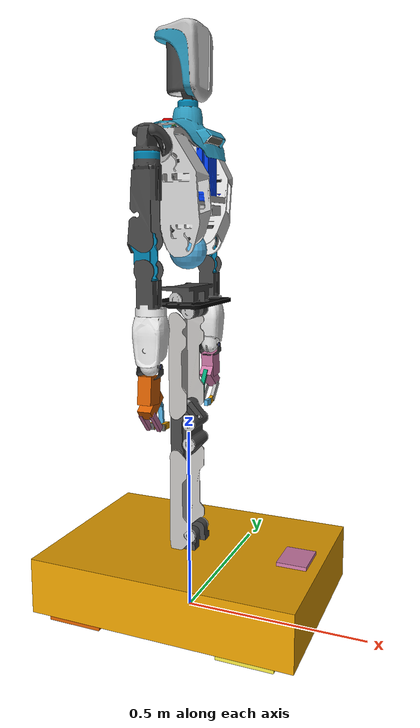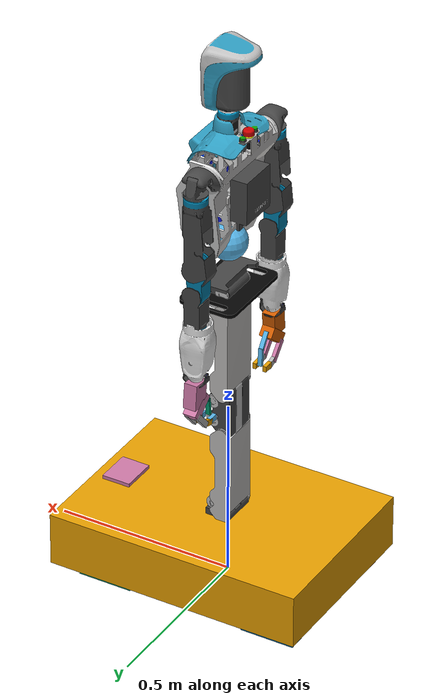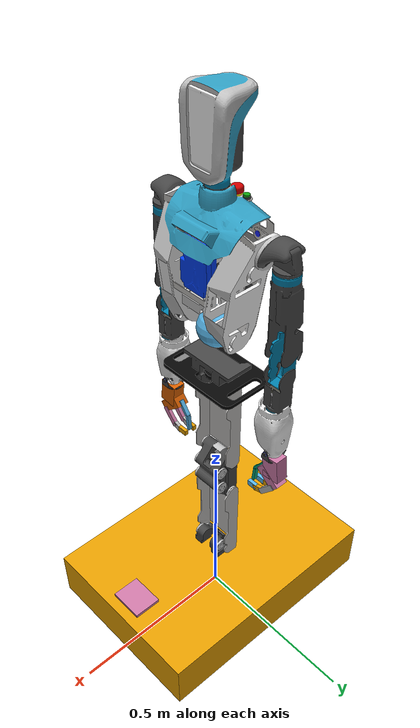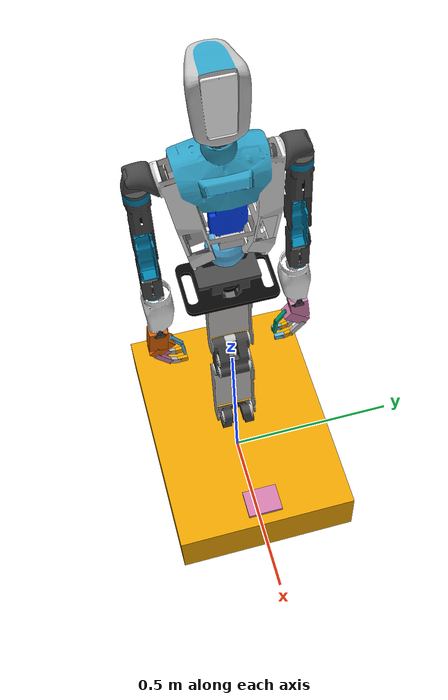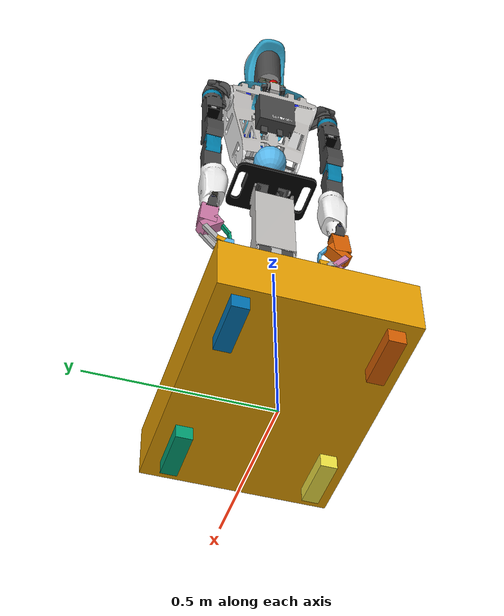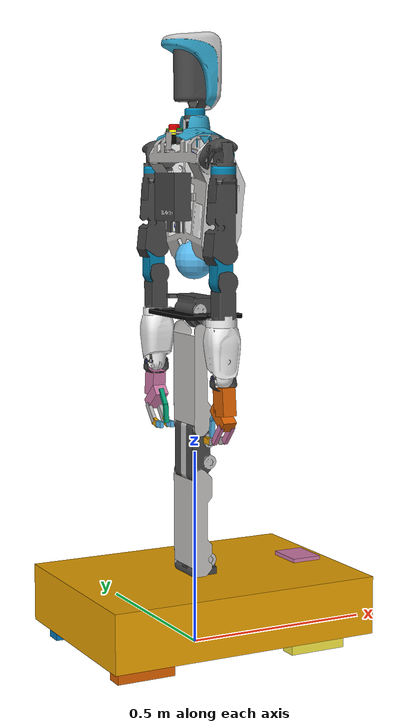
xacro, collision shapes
<?xml version="1.0"?>
<robot name="SEED-Noid-Mover-typeG" xmlns:xacro="http://ros.org/wiki/xacro">

  <!-- The following included files set up definitions of parts of the robot body -->
  <!-- wraps upperbody and hand-->
  <xacro:include filename="$(find seed_r7_description)/typeg/noid-upper.urdf.xacro" />
  <!-- wraps lifter and wheels-->
  <xacro:include filename="$(find seed_r7_description)/typeg/noid-wheels.urdf.xacro" />

 <!-- Now we can start using the macros included above to define the actual robot -->
 <xacro:noid-upper/>
 <xacro:noid-wheels base_link="base_link"/>

 <!-- gazebo settings -->
 <!-- camera -->

<xacro:property  name="camera_name" value="front_camera"/>
<link name="${camera_name}_depth_optical_frame"/>
<joint name="${camera_name}_depth_optical_joint" type="fixed">
  <origin xyz="0 0 0" rpy="${-M_PI/2} 0 ${-M_PI/2}" />
  <parent link="${camera_name}_link" />
  <child link="${camera_name}_depth_optical_frame" />
</joint>
<xacro:gazebo_depth_camera link_name="${camera_name}_link"
                      frame_name="${camera_name}_depth_optical_frame"
                      camera_name="${camera_name}"/>

<xacro:property  name="camera_name" value="rear_camera"/>
<link name="${camera_name}_depth_optical_frame"/>
<joint name="${camera_name}_depth_optical_joint" type="fixed">
  <origin xyz="0 0 0" rpy="${-M_PI/2} 0 ${-M_PI/2}" />
  <parent link="${camera_name}_link" />
  <child link="${camera_name}_depth_optical_frame" />
</joint>
<xacro:gazebo_depth_camera link_name="${camera_name}_link"
                      frame_name="${camera_name}_depth_optical_frame"
                      camera_name="${camera_name}"/>

<xacro:property  name="camera_name" value="chest_camera"/>
<link name="${camera_name}_depth_optical_frame"/>
<joint name="${camera_name}_depth_optical_joint" type="fixed">
  <origin xyz="0 0 0" rpy="${-M_PI/2} 0 ${-M_PI/2}" />
  <parent link="${camera_name}_link" />
  <child link="${camera_name}_depth_optical_frame" />
</joint>
<xacro:gazebo_depth_camera link_name="${camera_name}_link"
                      frame_name="${camera_name}_depth_optical_frame"
                      camera_name="${camera_name}"/>

 <!-- laser -->
 <xacro:gazebo_laser_sensor link_name="wheels_base_laser_link"
                            frame_name="wheels_base_laser_link" />

 <!-- joint control -->
 <xacro:gazebo_trajectory_controller />

 <!-- mobile base -->
 <xacro:gazebo_base_controller base_frame="base_link" />

 <!-- mimic joints -->
 <gazebo>
   <plugin name="mimic_updater" filename="libmimic_plugin.so">
     <!-- lifter -->
     <mimic joint="knee_joint"  offset="0.0" multiplier="-1.0"
            P="100" I="0.1" D="10" i_max="500" i_min="-500"
            command_max="2000" command_min="-2000" velocity='true'>
       knee_joint_mimic
     </mimic>
     <mimic joint="ankle_joint"  offset="0.0" multiplier="-1.0"
            P="100" I="0.1" D="10" i_max="500" i_min="-500"
            command_max="2000" command_min="-2000" velocity='true'>
       ankle_joint_mimic
     </mimic>
     <!-- lifter(dummy) -->
     <mimic joint="knee_joint"  offset="0.0" multiplier="-1.0"
            P="100" I="0.0" D="10" i_max="0" i_min="0"
            command_max="200" command_min="-200" velocity='true'>
       knee_joint_dummy
     </mimic>
     <mimic joint="ankle_joint"  offset="0.0" multiplier="1.0"
            P="100" I="0.0" D="10" i_max="0" i_min="0"
            command_max="200" command_min="-200"  velocity='true'>
       ankle_joint_dummy
     </mimic>

     <!-- lhand -->
     <mimic joint="l_thumb_joint"  offset="0.0" multiplier="-1.0"
            P="30" I="0.0" D="0.03" i_max="0" i_min="0"
            command_max="50" command_min="-50">
       l_indexbase_joint
     </mimic>
     <mimic joint="l_thumb_joint"  offset="-0.2" multiplier="-0.3"
            P="30" I="0.0" D="0.03" i_max="0" i_min="0"
            command_max="50" command_min="-50">
       l_indexmid_joint
     </mimic>
     <mimic joint="l_thumb_joint"  offset="-0.2" multiplier="-0.3"
            P="30" I="0.0" D="0.03" i_max="0" i_min="0"
            command_max="50" command_min="-50">
       l_indexend_joint
     </mimic>
     <!-- rhand -->
     <mimic joint="r_thumb_joint"  offset="0.0" multiplier="-1.0"
            P="30" I="0.0" D="0.03" i_max="0" i_min="0"
            command_max="50" command_min="-50">
       r_indexbase_joint
     </mimic>
     <mimic joint="r_thumb_joint"  offset="0.2" multiplier="-0.3"
            P="30" I="0.0" D="0.03" i_max="0" i_min="0"
            command_max="50" command_min="-50">
       r_indexmid_joint
     </mimic>
     <mimic joint="r_thumb_joint"  offset="0.2" multiplier="-0.3"
            P="30" I="0.0" D="0.03" i_max="0" i_min="0"
            command_max="50" command_min="-50">
       r_indexend_joint
     </mimic>

      <!-- r_elbow -->
     <mimic joint="r_elbow_joint"  offset="0.0" multiplier="-1.0"
            P="100" I="0.01" D="10" i_max="0" i_min="-0"
            command_max="50" command_min="-50" velocity='true'>
       r_elbow_joint_mimic
     </mimic>

     <mimic joint="r_elbow_joint"  offset="0.0" multiplier="0.591"
            P="100" I="0.01" D="10" i_max="0" i_min="-0"
            command_max="50" command_min="-50" velocity='true'>
       r_elbow_middle_joint
     </mimic>

     <mimic joint="r_elbow_joint"  offset="0.0" multiplier="0.409"
            P="100" I="0.01" D="10" i_max="0" i_min="-0"
            command_max="50" command_min="-50" velocity='true'>
       r_elbow_middle_joint_mimic
     </mimic>

     <!-- l_elbow -->
     <mimic joint="l_elbow_joint"  offset="0.0" multiplier="-1.0"
            P="100" I="0.01" D="10" i_max="0" i_min="-0"
            command_max="50" command_min="-50" velocity='true'>
       l_elbow_joint_mimic
     </mimic>

     <mimic joint="l_elbow_joint"  offset="0.0" multiplier="0.591"
            P="100" I="0.01" D="10" i_max="0" i_min="-0"
            command_max="50" command_min="-50" velocity='true'>
       l_elbow_middle_joint
     </mimic>

     <mimic joint="l_elbow_joint"  offset="0.0" multiplier="0.409"
            P="100" I="0.01" D="10" i_max="0" i_min="-0"
            command_max="50" command_min="-50" velocity='true'>
       l_elbow_middle_joint_mimic
     </mimic>

   </plugin>
 </gazebo>

</robot>

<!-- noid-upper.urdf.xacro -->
<!-- XML namespaces -->
<robot name="noid-upper" xmlns:xacro="http://ros.org/wiki/xacro">

  <xacro:include filename="$(find seed_r7_description)/urdf/typeG_upperbody/noid_upper_typeg.urdf.xacro" />
  <xacro:include filename="$(find seed_r7_description)/urdf/trx_s/trx_s.urdf.xacro" />

  <xacro:macro name="noid-upper" params="disable_mesh:=false">

  <xacro:noid_upper base_link="waist_link" r_hand_link="r_hand_link" l_hand_link="l_hand_link" disable_mesh="${disable_mesh}"/>

  <xacro:trx_s prefix="r" reflect="1" disable_mesh="${disable_mesh}"/>
  <xacro:trx_s prefix="l" reflect="-1" disable_mesh="${disable_mesh}"/>

  <joint name="upper_lower_connector" type="fixed">
    <parent link="lifter_top_link"/>
    <child link="waist_link"/>
    <origin xyz="0.0 0.0 0.0" rpy="0 0 0 "/>
  </joint>

  </xacro:macro>

</robot>

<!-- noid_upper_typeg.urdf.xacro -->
<!-- XML namespaces -->
<robot name="noid_upper_typeg" xmlns:xacro="http://ros.org/wiki/xacro">

  <xacro:include filename="$(find seed_r7_description)/urdf/gazebo.xacro" />

  <xacro:property name="wrist_sensor_offset" value="0.0"/>

  <xacro:macro name="noid_upper" params="base_link disable_mesh:=false r_hand_link:=r_hand_link l_hand_link:=l_hand_link">
  <!-- ============================   typeG_upper   ============================ -->
  <link name="${base_link}">
    <xacro:unless value="${disable_mesh}"> <visual>
      <origin xyz="0 0 0" rpy="0 0 0"/>
      <geometry>
        <mesh filename="package://seed_r7_description/meshes/typeG_upperbody/waist_link.dae" scale="1 1 1" />
      </geometry>
    </visual> </xacro:unless>
    <xacro:unless value="${disable_mesh}"> <collision>
      <origin xyz="0 0 0" rpy="0 -0 0"/>
      <geometry>
        <mesh filename="package://seed_r7_description/meshes/typeG_upperbody/waist_link.dae" scale="1 1 1" />
      </geometry>
    </collision> </xacro:unless>
    <inertial>
      <mass value="1.257" />
      <origin xyz="0 0 0.0" rpy="0 0 0"/>
      <inertia ixx="0.034" ixy="0" ixz="0" iyy="0.034" iyz="0" izz="0.018"/>
    </inertial>
  </link>
  <xacro:gazebo_link_reference link_name="${base_link}" />

  <link name="hip_sphere_link">
    <xacro:unless value="${disable_mesh}"> <visual>
      <origin xyz="0 0 0" rpy="0 0 0"/>
      <geometry>
        <mesh filename="package://seed_r7_description/meshes/typeG_upperbody/hip_sphere_link.dae" scale="1 1 1" />
      </geometry>
    </visual> </xacro:unless>
    <xacro:unless value="${disable_mesh}"> <collision>
      <origin xyz="0 0 0.132" rpy="0 0 0"/>
      <geometry>
        <sphere radius="0.05"/>
      </geometry>
    </collision> </xacro:unless>
    <inertial>
      <mass value="1.257" />
      <origin xyz="0 0 0.042" rpy="0 -0 0"/>
      <!-- inertia ixx="0.034" ixy="0" ixz="0" iyy="0.034" iyz="0" izz="0.018"/ -->
      <!-- just fixed for gazebo / reduce inertia-->
      <inertia ixx="0.01" ixy="0" ixz="0" iyy="0.01" iyz="0" izz="0.007"/>
    </inertial>
  </link>
  <xacro:gazebo_link_reference link_name="hip_sphere_link" />

  <link name="hip_center">
    <xacro:unless value="${disable_mesh}"> <visual>
      <origin xyz="0 0 0" rpy="0 0 0"/>
      <geometry>
        <mesh filename="package://seed_r7_description/meshes/typeG_upperbody/hip_center_link.dae" scale="1 1 1" />
      </geometry>
    </visual> </xacro:unless>
    <xacro:unless value="${disable_mesh}"> <collision>
      <origin xyz="0 0 0" rpy="0 0 0"/>
      <geometry>
        <sphere radius="0.05"/>
      </geometry>
    </collision> </xacro:unless>
    <inertial>
      <mass value="0.1" />
      <origin xyz="0 0 0" rpy="0 0 0"/>
      <inertia ixx="0.003" ixy="0" ixz="0" iyy="0.003" iyz="0" izz="0.003"/>
    </inertial>
  </link>
  <xacro:gazebo_link_reference link_name="hip_center" />

  <link name="body_link">
    <xacro:unless value="${disable_mesh}"> <visual>
      <origin xyz="0 0 0" rpy="0 0 0"/>
      <geometry>
        <mesh filename="package://seed_r7_description/meshes/typeG_upperbody/body_link.dae" scale="1 1 1" />
      </geometry>
    </visual> </xacro:unless>
    <xacro:unless value="${disable_mesh}"> <collision>
      <origin xyz="0 0 0" rpy="0 0 0"/>
      <geometry>
        <mesh filename="package://seed_r7_description/meshes/typeG_upperbody/body_link.dae" scale="1 1 1" />
      </geometry>
    </collision> </xacro:unless>
    <inertial>
      <mass value="10.551" />
      <origin xyz="0 0 0.22" rpy="0 -0 0"/>
      <inertia ixx="0.13" ixy="0" ixz="0" iyy="0.12" iyz="0" izz="0.114"/>
    </inertial>
  </link>
  <xacro:gazebo_link_reference link_name="body_link" />

  <link name="l_shoulder_link">
    <xacro:unless value="${disable_mesh}"> <visual>
      <origin xyz="0 0 0" rpy="0 0 0"/>
      <geometry>
        <mesh filename="package://seed_r7_description/meshes/typeG_upperbody/l_shoulder_link.dae" scale="1 1 1" />
      </geometry>
    </visual> </xacro:unless>
    <xacro:unless value="${disable_mesh}"> <collision>
      <origin xyz="0 0 0" rpy="0 0 0"/>
      <geometry>
        <mesh filename="package://seed_r7_description/meshes/typeG_upperbody/l_shoulder_link.dae" scale="1 1 1" />
      </geometry>
    </collision> </xacro:unless>
    <inertial>
      <mass value="0.242" />
      <!-- just fixed for gazebo / increase inertia-->
      <origin xyz="0 0.02 0.015" rpy="0 -0 0"/>
      <inertia ixx="0.00133" ixy="0" ixz="0" iyy="0.001" iyz="0" izz="0.00133"/>
    </inertial>
  </link>
  <xacro:gazebo_link_reference link_name="l_shoulder_link" />

  <link name="l_shoulder_center">
    <xacro:unless value="${disable_mesh}"> <visual>
      <origin xyz="0 0 0" rpy="0 -0 0"/>
      <geometry>
        <mesh filename="package://seed_r7_description/meshes/typeG_upperbody/l_shoulder_center_link.dae" scale="1 1 1" />
      </geometry>
    </visual> </xacro:unless>
    <xacro:unless value="${disable_mesh}"> <collision>
      <origin xyz="0 0 0" rpy="0 -0 0"/>
      <geometry>
        <mesh filename="package://seed_r7_description/meshes/typeG_upperbody/l_shoulder_center_link.dae" scale="1 1 1" />
      </geometry>
    </collision> </xacro:unless>
    <inertial>
      <mass value="0.744" />
      <!--origin xyz="0 0.01 0" rpy="0 -0 0"/-->
      <origin xyz="0 -0.01 -0.06" rpy="0 -0 0"/>
      <inertia ixx="0.000841" ixy="0" ixz="0" iyy="0.000835" iyz="0" izz="0.000304"/>
    </inertial>
  </link>
  <xacro:gazebo_link_reference link_name="l_shoulder_center" />

  <link name="l_upperarm_link">
    <xacro:unless value="${disable_mesh}"> <visual>
      <origin xyz="0 0 0" rpy="0 -0 0"/>
      <geometry>
        <mesh filename="package://seed_r7_description/meshes/typeG_upperbody/upperarm_link.dae" scale="1 1 1" />
      </geometry>
    </visual> </xacro:unless>
    <xacro:unless value="${disable_mesh}"> <collision>
      <origin xyz="0 0 0" rpy="0 -0 0"/>
      <geometry>
        <mesh filename="package://seed_r7_description/meshes/typeG_upperbody/upperarm_link.dae" scale="1 1 1" />
      </geometry>
    </collision> </xacro:unless>
    <inertial>
      <mass value="0.574" />
      <!-- fix for gazebo -->
      <origin xyz="0.005 0 -0.0654" rpy="0 -0 0"/>
      <inertia ixx="0.00214" ixy="0" ixz="0" iyy="0.00217" iyz="0" izz="0.003"/>
    </inertial>
  </link>
  <xacro:gazebo_link_reference link_name="l_upperarm_link" />

  <link name="l_elbow_virtual_link">
    <inertial>
      <mass value="0.001" />
      <origin xyz="0 0 0" rpy="0 0 0"/>
      <inertia ixx="0.01" ixy="0" ixz="0" iyy="0.01" iyz="0" izz="0.01"/>
    </inertial>
  </link>
  <xacro:gazebo_link_reference link_name="l_elbow_virtual_link" />

  <link name="l_elbow_virtual_link_dummy">
    <inertial>
      <mass value="0.001" />
      <origin xyz="0 0 0" rpy="0 0 0"/>
      <inertia ixx="0.01" ixy="0" ixz="0" iyy="0.01" iyz="0" izz="0.01"/>
    </inertial>
  </link>
  <xacro:gazebo_link_reference link_name="l_elbow_virtual_link_dummy" />

  <link name="l_elbow_middle_link">
    <xacro:unless value="${disable_mesh}"> <visual>
      <origin xyz="0 0 0" rpy="0 -0 0"/>
      <geometry>
        <mesh filename="package://seed_r7_description/meshes/typeG_upperbody/elbow_middle_link.dae" scale="1 1 1" />
      </geometry>
    </visual> </xacro:unless>
    <xacro:unless value="${disable_mesh}"> <collision>
      <origin xyz="0 0 0" rpy="0 -0 0"/>
      <geometry>
        <mesh filename="package://seed_r7_description/meshes/typeG_upperbody/elbow_middle_link.dae" scale="1 1 1" />
      </geometry>
    </collision> </xacro:unless>
    <inertial>
      <mass value="0.162" />
      <origin xyz="-0.014 0 -0.032" rpy="0 -0 0"/>
      <inertia ixx="0.00178" ixy="0" ixz="0" iyy="0.00179" iyz="0" izz="0.0035"/>
    </inertial>
  </link>
  <xacro:gazebo_link_reference link_name="l_elbow_middle_link" />

  <link name="l_elbow_link">
    <xacro:unless value="${disable_mesh}"> <visual>
      <origin xyz="0 0 0" rpy="0 -0 0"/>
      <geometry>
        <mesh filename="package://seed_r7_description/meshes/typeG_upperbody/elbow_link.dae" scale="1 1 1" />
      </geometry>
    </visual> </xacro:unless>
    <xacro:unless value="${disable_mesh}"> <collision>
      <origin xyz="0 0 0" rpy="0 -0 0"/>
      <geometry>
        <mesh filename="package://seed_r7_description/meshes/typeG_upperbody/elbow_link.dae" scale="1 1 1" />
      </geometry>
    </collision> </xacro:unless>
    <inertial>
      <mass value="0.711" />
      <!-- fix for gazebo -->
      <origin xyz="-0.03 0 -0.0546" rpy="0 -0 0"/>
      <inertia ixx="0.00178" ixy="0" ixz="0" iyy="0.00179" iyz="0" izz="0.0035"/>
    </inertial>
  </link>
  <xacro:gazebo_link_reference link_name="l_elbow_link" />

  <link name="l_forearm_link">
    <xacro:unless value="${disable_mesh}"> <visual>
      <origin xyz="0 0 0" rpy="0 0 0"/>
      <geometry>
        <mesh filename="package://seed_r7_description/meshes/typeG_upperbody/l_forearm_link.dae" scale="1 1 1" />
      </geometry>
    </visual> </xacro:unless>
    <xacro:unless value="${disable_mesh}"> <collision>
      <origin xyz="0 0 0" rpy="0 0 0"/>
      <geometry>
        <mesh filename="package://seed_r7_description/meshes/typeG_upperbody/l_forearm_link.dae" scale="1 1 1" />
      </geometry>
    </collision> </xacro:unless>
    <inertial>
      <mass value="0.132" />
      <origin xyz="0.006 0 -0.0738" rpy="0 -0 0"/>
      <!--inertia ixx="0.00276" ixy="0" ixz="0" iyy="0.00286" iyz="0" izz="0.004"/-->
      <inertia ixx="0.0007" ixy="0" ixz="0" iyy="0.0007" iyz="0" izz="0.0004"/>
    </inertial>
  </link>
  <xacro:gazebo_link_reference link_name="l_forearm_link" />

  <link name="l_wrist_center">
    <xacro:unless value="${disable_mesh}"> <visual>
      <origin xyz="0 0 0" rpy="0 0 0"/>
      <geometry>
        <mesh filename="package://seed_r7_description/meshes/typeG_upperbody/l_wrist_center_link.dae" scale="1 1 1" />
      </geometry>
    </visual> </xacro:unless>
    <xacro:unless value="${disable_mesh}"> <collision>
      <origin xyz="0 0 0" rpy="0 0 0"/>
      <geometry>
        <mesh filename="package://seed_r7_description/meshes/typeG_upperbody/l_wrist_center_link.dae" scale="1 1 1" />
      </geometry>
    </collision> </xacro:unless>
    <inertial>
      <mass value="0.05" />
      <origin xyz="0 0 0" rpy="0 -0 0"/>
      <inertia ixx="0.0001" ixy="0" ixz="0" iyy="0.0001" iyz="0" izz="0.0001"/>
    </inertial>
  </link>
  <xacro:gazebo_link_reference link_name="l_wrist_center" />

  <link name="l_wrist_r_link">
    <xacro:unless value="${disable_mesh}"> <visual>
      <origin xyz="0 0 0" rpy="0 0 0"/>
      <geometry>
        <mesh filename="package://seed_r7_description/meshes/typeG_upperbody/l_wrist_r_link.dae" scale="1 1 1" />
      </geometry>
    </visual> </xacro:unless>
    <xacro:unless value="${disable_mesh}"> <collision>
      <origin xyz="0 0 0" rpy="0 0 0"/>
      <geometry>
        <mesh filename="package://seed_r7_description/meshes/typeG_upperbody/l_wrist_r_link.dae" scale="1 1 1" />
      </geometry>
    </collision> </xacro:unless>
    <inertial>
      <mass value="0.05" />
      <origin xyz="0 0 0" rpy="0 -0 0"/>
      <inertia ixx="0.0001" ixy="0" ixz="0" iyy="0.0001" iyz="0" izz="0.0001"/>
    </inertial>
  </link>
  <xacro:gazebo_link_reference link_name="l_wrist_r_link" />

  <link name="neck_link">
    <xacro:unless value="${disable_mesh}"> <visual>
      <origin xyz="0 0 0" rpy="0 -0 0"/>
      <geometry>
        <mesh filename="package://seed_r7_description/meshes/typeG_upperbody/neck_link.dae" scale="1 1 1" />
      </geometry>
    </visual> </xacro:unless>
    <xacro:unless value="${disable_mesh}"> <collision>
      <origin xyz="0 0 0" rpy="0 -0 0"/>
      <geometry>
        <mesh filename="package://seed_r7_description/meshes/typeG_upperbody/neck_link.dae" scale="1 1 1" />
      </geometry>
    </collision> </xacro:unless>
    <inertial>
      <mass value="0.341" />
      <origin xyz="0 0 0.0595" rpy="0 -0 0"/>
      <!--inertia ixx="1.64186e-35" ixy="0" ixz="0" iyy="1.64186e-35" iyz="0" izz="0"/-->
      <inertia ixx="0.001" ixy="0" ixz="0" iyy="0.001" iyz="0" izz="0.002"/>
    </inertial>
  </link>
  <xacro:gazebo_link_reference link_name="neck_link" />

  <link name="head_base_link">
    <xacro:unless value="${disable_mesh}"> <visual>
      <origin xyz="0 0 0" rpy="0 -0 0"/>
      <geometry>
        <mesh filename="package://seed_r7_description/meshes/typeG_upperbody/head_base_link.dae" scale="1 1 1" />
      </geometry>
    </visual> </xacro:unless>
    <xacro:unless value="${disable_mesh}"> <collision>
      <origin xyz="0 0 0" rpy="0 -0 0"/>
      <geometry>
        <mesh filename="package://seed_r7_description/meshes/typeG_upperbody/head_base_link.dae" scale="1 1 1" />
      </geometry>
    </collision> </xacro:unless>
    <inertial>
      <mass value="0.1" />
      <origin xyz="0 0 0" rpy="0 -0 0"/>
      <inertia ixx="0.0005" ixy="0" ixz="0" iyy="0.0005" iyz="0" izz="0.0005"/>
    </inertial>
  </link>
  <xacro:gazebo_link_reference link_name="head_base_link" />

  <link name="head_link">
    <xacro:unless value="${disable_mesh}"> <visual>
      <origin xyz="0 0 0" rpy="0 -0 0"/>
      <geometry>
        <mesh filename="package://seed_r7_description/meshes/typeG_upperbody/head_link.dae" scale="1 1 1" />
      </geometry>
    </visual> </xacro:unless>
    <xacro:unless value="${disable_mesh}"> <collision>
      <origin xyz="0 0 0" rpy="0 -0 0"/>
      <geometry>
        <mesh filename="package://seed_r7_description/meshes/typeG_upperbody/head_link.dae" scale="1 1 1" />
      </geometry>
    </collision> </xacro:unless>
    <inertial>
      <mass value="0.974" />
      <origin xyz="0.01 0 0.070" rpy="0 -0 0"/>
      <inertia ixx="0.005" ixy="0" ixz="0" iyy="0.005" iyz="0" izz="0.005"/>
    </inertial>
  </link>
  <xacro:gazebo_link_reference link_name="head_link" />

  <link name="r_shoulder_link">
    <xacro:unless value="${disable_mesh}"> <visual>
      <origin xyz="0 0 0" rpy="0 0 0"/>
      <geometry>
        <mesh filename="package://seed_r7_description/meshes/typeG_upperbody/r_shoulder_link.dae" scale="1 1 1" />
      </geometry>
    </visual> </xacro:unless>
    <xacro:unless value="${disable_mesh}"> <collision>
      <origin xyz="0 0 0" rpy="0 0 0"/>
      <geometry>
        <mesh filename="package://seed_r7_description/meshes/typeG_upperbody/r_shoulder_link.dae" scale="1 1 1" />
      </geometry>
    </collision> </xacro:unless>
    <inertial>
      <mass value="0.242" />
      <origin xyz="0 -0.02 0.015" rpy="0 -0 0"/>
      <inertia ixx="0.00133" ixy="0" ixz="0" iyy="0.001" iyz="0" izz="0.00133"/>
    </inertial>
  </link>
  <xacro:gazebo_link_reference link_name="r_shoulder_link" />

  <link name="r_shoulder_center">
    <xacro:unless value="${disable_mesh}"> <visual>
      <origin xyz="0 0 0" rpy="0 -0 0"/>
      <geometry>
        <mesh filename="package://seed_r7_description/meshes/typeG_upperbody/r_shoulder_center_link.dae" scale="1 1 1" />
      </geometry>
    </visual> </xacro:unless>
    <xacro:unless value="${disable_mesh}"> <collision>
      <origin xyz="0 0 0" rpy="0 -0 0"/>
      <geometry>
        <mesh filename="package://seed_r7_description/meshes/typeG_upperbody/r_shoulder_center_link.dae" scale="1 1 1" />
      </geometry>
    </collision> </xacro:unless>
    <inertial>
      <mass value="0.744" />
      <!--origin xyz="0 -0.01 0" rpy="0 -0 0"/-->
      <origin xyz="0 0.01 -0.06" rpy="0 -0 0"/>
      <inertia ixx="0.000841" ixy="0" ixz="0" iyy="0.000835" iyz="0" izz="0.000305"/>
    </inertial>
  </link>
  <xacro:gazebo_link_reference link_name="r_shoulder_center" />

  <link name="r_upperarm_link">
    <xacro:unless value="${disable_mesh}"> <visual>
      <origin xyz="0 0 0" rpy="0 -0 0"/>
      <geometry>
        <mesh filename="package://seed_r7_description/meshes/typeG_upperbody/upperarm_link.dae" scale="1 1 1" />
      </geometry>
    </visual> </xacro:unless>
    <xacro:unless value="${disable_mesh}"> <collision>
      <origin xyz="0 0 0" rpy="0 -0 0"/>
      <geometry>
        <mesh filename="package://seed_r7_description/meshes/typeG_upperbody/upperarm_link.dae" scale="1 1 1" />
      </geometry>
    </collision> </xacro:unless>
    <inertial>
      <mass value="0.574" />
      <!-- fix for gazebo -->
      <origin xyz="0.005 0 -0.0654" rpy="0 -0 0"/>
      <inertia ixx="0.00214" ixy="0" ixz="0" iyy="0.00217" iyz="0" izz="0.003"/>
    </inertial>
  </link>
  <xacro:gazebo_link_reference link_name="r_upperarm_link" />

  <link name="r_elbow_virtual_link">
    <inertial>
      <mass value="0.001" />
      <origin xyz="0 0 0" rpy="0 0 0"/>
      <inertia ixx="0.01" ixy="0" ixz="0" iyy="0.01" iyz="0" izz="0.01"/>
    </inertial>
  </link>
  <xacro:gazebo_link_reference link_name="r_elbow_virtual_link" />

  <link name="r_elbow_virtual_link_dummy">
    <inertial>
      <mass value="0.001" />
      <origin xyz="0 0 0" rpy="0 0 0"/>
      <inertia ixx="0.01" ixy="0" ixz="0" iyy="0.01" iyz="0" izz="0.01"/>
    </inertial>
  </link>
  <xacro:gazebo_link_reference link_name="r_elbow_virtual_link_dummy" />

  <link name="r_elbow_middle_link">
    <xacro:unless value="${disable_mesh}"> <visual>
      <origin xyz="0 0 0" rpy="0 -0 0"/>
      <geometry>
        <mesh filename="package://seed_r7_description/meshes/typeG_upperbody/elbow_middle_link.dae" scale="1 1 1" />
      </geometry>
    </visual> </xacro:unless>
    <xacro:unless value="${disable_mesh}"> <collision>
      <origin xyz="0 0 0" rpy="0 -0 0"/>
      <geometry>
        <mesh filename="package://seed_r7_description/meshes/typeG_upperbody/elbow_middle_link.dae" scale="1 1 1" />
      </geometry>
    </collision> </xacro:unless>
    <inertial>
      <mass value="0.162" />
      <origin xyz="-0.014 0 -0.032" rpy="0 -0 0"/>
      <inertia ixx="0.00178" ixy="0" ixz="0" iyy="0.00179" iyz="0" izz="0.0035"/>
    </inertial>
  </link>
  <xacro:gazebo_link_reference link_name="r_elbow_middle_link" />

  <link name="r_elbow_link">
    <xacro:unless value="${disable_mesh}"> <visual>
      <origin xyz="0 0 0" rpy="0 -0 0"/>
      <geometry>
        <mesh filename="package://seed_r7_description/meshes/typeG_upperbody/elbow_link.dae" scale="1 1 1" />
      </geometry>
    </visual> </xacro:unless>
    <xacro:unless value="${disable_mesh}"> <collision>
      <origin xyz="0 0 0" rpy="0 -0 0"/>
      <geometry>
        <mesh filename="package://seed_r7_description/meshes/typeG_upperbody/elbow_link.dae" scale="1 1 1" />
      </geometry>
    </collision> </xacro:unless>
    <inertial>
      <mass value="0.711" />
      <!-- fix for gazebo -->
      <origin xyz="-0.03 0 -0.0546" rpy="0 -0 0"/>
      <inertia ixx="0.00178" ixy="0" ixz="0" iyy="0.00179" iyz="0" izz="0.0035"/>
    </inertial>
  </link>
  <xacro:gazebo_link_reference link_name="r_elbow_link" />

  <link name="r_forearm_link">
    <xacro:unless value="${disable_mesh}"> <visual>
      <origin xyz="0 0 0" rpy="0 0 0"/>
      <geometry>
        <mesh filename="package://seed_r7_description/meshes/typeG_upperbody/r_forearm_link.dae" scale="1 1 1" />
      </geometry>
    </visual> </xacro:unless>
    <xacro:unless value="${disable_mesh}"> <collision>
      <origin xyz="0 0 0" rpy="0 0 0"/>
      <geometry>
        <mesh filename="package://seed_r7_description/meshes/typeG_upperbody/r_forearm_link.dae" scale="1 1 1" />
      </geometry>
    </collision> </xacro:unless>
    <inertial>
      <mass value="0.132" />
      <origin xyz="0.006 0 -0.0738" rpy="0 -0 0"/>
      <!--inertia ixx="0.00276" ixy="0" ixz="0" iyy="0.00286" iyz="0" izz="0.004"/-->
      <inertia ixx="0.0007" ixy="0" ixz="0" iyy="0.0007" iyz="0" izz="0.0004"/>
    </inertial>
  </link>
  <xacro:gazebo_link_reference link_name="r_forearm_link" />

  <link name="r_wrist_center">
    <xacro:unless value="${disable_mesh}"> <visual>
      <origin xyz="0 0 0" rpy="0 0 0"/>
      <geometry>
        <mesh filename="package://seed_r7_description/meshes/typeG_upperbody/r_wrist_center_link.dae" scale="1 1 1" />
      </geometry>
    </visual> </xacro:unless>
    <xacro:unless value="${disable_mesh}"> <collision>
      <origin xyz="0 0 0" rpy="0 0 0"/>
      <geometry>
        <mesh filename="package://seed_r7_description/meshes/typeG_upperbody/r_wrist_center_link.dae" scale="1 1 1" />
      </geometry>
    </collision> </xacro:unless>
    <inertial>
      <mass value="0.05" />
      <origin xyz="0 0 0" rpy="0 -0 0"/>
      <inertia ixx="0.0001" ixy="0" ixz="0" iyy="0.0001" iyz="0" izz="0.0001"/>
    </inertial>
  </link>
  <xacro:gazebo_link_reference link_name="r_wrist_center" />

  <link name="r_wrist_r_link">
    <xacro:unless value="${disable_mesh}"> <visual>
      <origin xyz="0 0 0" rpy="0 0 0"/>
      <geometry>
        <mesh filename="package://seed_r7_description/meshes/typeG_upperbody/r_wrist_r_link.dae" scale="1 1 1" />
      </geometry>
    </visual> </xacro:unless>
    <xacro:unless value="${disable_mesh}"> <collision>
      <origin xyz="0 0 0" rpy="0 0 0"/>
      <geometry>
        <mesh filename="package://seed_r7_description/meshes/typeG_upperbody/r_wrist_r_link.dae" scale="1 1 1" />
      </geometry>
    </collision> </xacro:unless>
    <inertial>
      <mass value="0.05" />
      <origin xyz="0 0 0" rpy="0 -0 0"/>
      <inertia ixx="0.0001" ixy="0" ixz="0" iyy="0.0001" iyz="0" izz="0.0001"/>
    </inertial>
  </link>
  <xacro:gazebo_link_reference link_name="r_wrist_r_link" />

  <joint name="waist_y_joint" type="revolute">
    <parent link="${base_link}"/>
    <child  link="hip_sphere_link"/>
    <origin xyz="0 0 0.005" rpy="0 -0 0 "/>
    <axis   xyz="0 0 1"/>
    <!-- from -120 to 120 degrees-->
    <limit lower="-2.09" upper="2.09" effort="500" velocity="0.6" />
    <dynamics damping="0.2" friction="0" />
  </joint>
  <xacro:gazebo_transmission joint_name="waist_y_joint" />

  <joint name="waist_p_joint" type="revolute">
    <parent link="hip_sphere_link"/>
    <child  link="hip_center"/>
    <origin xyz="0 0 0.132" rpy="0 -0 0 "/>
    <axis   xyz="0 1 0"/>
    <!-- from -10 to 40 degrees-->
    <limit lower="-0.17" upper="0.69" effort="500" velocity="0.4" />
    <dynamics damping="0.2" friction="0" />
  </joint>
  <xacro:gazebo_transmission joint_name="waist_p_joint" />

  <joint name="waist_r_joint" type="revolute">
    <parent link="hip_center"/>
    <child  link="body_link"/>
    <origin xyz="0 0 0" rpy="0 -0 0 "/>
    <axis   xyz="1 0 0"/>
    <!-- from -7 to 7 degrees-->
    <limit lower="-0.12" upper="0.12" effort="500" velocity="0.3" />
    <dynamics damping="0.2" friction="0" />
  </joint>
  <xacro:gazebo_transmission joint_name="waist_r_joint" />

  <joint name="l_shoulder_p_joint" type="revolute">
    <parent link="body_link"/>
    <child  link="l_shoulder_link"/>
    <origin xyz="-0.018 0.134202 0.251871" rpy="0 0 0 "/>
    <axis   xyz="0 0.984808 -0.173648"/>
    <!-- from -89 to 17 degrees-->
    <limit lower="-1.55" upper="0.29" effort="200" velocity="0.4" />
    <dynamics damping="0.2" friction="0" />
  </joint>
  <xacro:gazebo_transmission joint_name="l_shoulder_p_joint" />

  <joint name="l_shoulder_r_joint" type="revolute">
    <parent link="l_shoulder_link"/>
    <child  link="l_shoulder_center"/>
    <origin xyz="0 0.064702 0.027177" rpy="0 0 0 "/>
    <axis   xyz="1 0 0"/>
    <!-- from -5 to 90 degrees-->
    <limit lower="-0.08" upper="1.57" effort="100" velocity="0.5" />
    <dynamics damping="0.2" friction="0" />
  </joint>
  <xacro:gazebo_transmission joint_name="l_shoulder_r_joint" />

  <joint name="l_shoulder_y_joint" type="revolute">
    <parent link="l_shoulder_center"/>
    <child  link="l_upperarm_link"/>
    <origin xyz="0 -0.01 -0.0455" rpy="0 -0 0 "/>
    <axis   xyz="0 0 1"/>
    <!-- from -90 to 90 degrees-->
    <limit lower="-1.57" upper="1.57" effort="100" velocity="1.1" />
    <dynamics damping="0.2" friction="0" />
  </joint>
  <xacro:gazebo_transmission joint_name="l_shoulder_y_joint" />

  <joint name="l_wrist_y_joint" type="revolute">
    <parent link="l_elbow_link"/>
    <child  link="l_forearm_link"/>
    <origin xyz="0.0 0 -0.1095" rpy="0 -0 0 "/>
    <axis   xyz="0 0 1"/>
    <!-- from -90 to 90 degrees-->
    <limit lower="-1.57" upper="1.57" effort="100" velocity="1.2" />
    <dynamics damping="0.2" friction="0" />
  </joint>
  <xacro:gazebo_transmission joint_name="l_wrist_y_joint" />

  <joint name="l_wrist_p_joint" type="revolute">
    <parent link="l_forearm_link"/>
    <child  link="l_wrist_center"/>
    <origin xyz="0 0 -0.124" rpy="0 -0 0 "/>
    <axis   xyz="0 1 0"/>
    <!-- from -7 to 7 degrees-->
    <limit lower="-0.12" upper="0.12" effort="100" velocity="0.8" />
    <dynamics damping="0.2" friction="0" />
  </joint>
  <xacro:gazebo_transmission joint_name="l_wrist_p_joint" />

  <joint name="l_wrist_r_joint" type="revolute">
    <parent link="l_wrist_center"/>
    <child  link="l_wrist_r_link"/>
    <origin xyz="0 0 0" rpy="0 -0 0 "/>
    <axis   xyz="1 0 0"/>
    <!-- from -90 to 20 degrees-->
    <limit lower="-1.57" upper="0.34" effort="100" velocity="1.8" />
    <dynamics damping="0.2" friction="0" />
  </joint>
  <xacro:gazebo_transmission joint_name="l_wrist_r_joint" />

  <joint name="l_wrist_to_hand_connector" type="fixed">
    <parent link="l_wrist_r_link"/>
    <child  link="${l_hand_link}"/>
    <origin xyz="0 0 -0.003" rpy="0 0 0 "/>
  </joint>

  <joint name="neck_y_joint" type="revolute">
    <parent link="body_link"/>
    <child  link="neck_link"/>
    <origin xyz="0.002 0 0.377" rpy="0 -0 0 "/>
    <axis   xyz="0 0 1"/>
    <!-- from -120 to 120 degrees-->
    <limit lower="-2.09" upper="2.09" effort="100" velocity="1.7" />
    <dynamics damping="0.2" friction="0" />
  </joint>
  <xacro:gazebo_transmission joint_name="neck_y_joint" />

  <joint name="neck_p_joint" type="revolute">
    <parent link="neck_link"/>
    <child  link="head_base_link"/>
    <!-- real x=0.015 but can't move by eef of head, so set below-->
    <origin xyz="0.0 0 0.0265" rpy="0 -0 0 "/>
    <axis   xyz="0 1 0"/>
    <!-- from -20 to 30 degrees-->
    <limit lower="-0.34" upper="0.52" effort="100" velocity="2.1" />
    <dynamics damping="0.2" friction="0" />
  </joint>
  <xacro:gazebo_transmission joint_name="neck_p_joint" />

  <joint name="neck_r_joint" type="revolute">
    <parent link="head_base_link"/>
    <child  link="head_link"/>
    <origin xyz="0 0 0" rpy="0 -0 0 "/>
    <axis   xyz="1 0 0"/>
    <!-- from -20 to 20 degrees-->
    <limit lower="-0.34" upper="0.34" effort="100" velocity="0.8" />
    <dynamics damping="0.2" friction="0" />
  </joint>
  <xacro:gazebo_transmission joint_name="neck_r_joint" />

  <joint name="r_shoulder_p_joint" type="revolute">
    <parent link="body_link"/>
    <child  link="r_shoulder_link"/>
    <origin xyz="-0.018 -0.134202 0.251871" rpy="0 -0 0 "/>
    <axis   xyz="0 0.984808 0.173648"/>
    <!-- from -89 to 17 degrees-->
    <limit lower="-1.55" upper="0.29" effort="200" velocity="0.4" />
    <dynamics damping="0.2" friction="0" />
  </joint>
  <xacro:gazebo_transmission joint_name="r_shoulder_p_joint" />

  <joint name="r_shoulder_r_joint" type="revolute">
    <parent link="r_shoulder_link"/>
    <child  link="r_shoulder_center"/>
    <origin xyz="0 -0.064702 0.027177" rpy="0 -0 0 "/>
    <axis   xyz="1 0 0"/>
    <!-- from -90 to 5 degrees-->
    <limit lower="-1.57" upper="0.08" effort="100" velocity="0.5" />
    <dynamics damping="0.2" friction="0" />
  </joint>
  <xacro:gazebo_transmission joint_name="r_shoulder_r_joint" />

  <joint name="r_shoulder_y_joint" type="revolute">
    <parent link="r_shoulder_center"/>
    <child  link="r_upperarm_link"/>
    <origin xyz="0 0.01 -0.0455" rpy="0 -0 0 "/>
    <axis   xyz="0 0 1"/>
    <!-- from -180 to 180 degrees-->
    <limit lower="-1.57" upper="1.57" effort="100" velocity="1.1" />
    <dynamics damping="0.2" friction="0" />
  </joint>
  <xacro:gazebo_transmission joint_name="r_shoulder_y_joint" />

  <joint name="r_wrist_y_joint" type="revolute">
    <parent link="r_elbow_link"/>
    <child  link="r_forearm_link"/>
    <origin xyz="0.0 0 -0.1095" rpy="0 -0 0 "/>
    <axis   xyz="0 0 1"/>
    <!-- from -90 to 90 degrees-->
    <limit lower="-1.57" upper="1.57" effort="100" velocity="1.2" />
    <dynamics damping="0.2" friction="0" />
  </joint>
  <xacro:gazebo_transmission joint_name="r_wrist_y_joint" />

  <joint name="r_wrist_p_joint" type="revolute">
    <parent link="r_forearm_link"/>
    <child  link="r_wrist_center"/>
    <origin xyz="0 0 -0.124" rpy="0 -0 0 "/>
    <axis   xyz="0 1 0"/>
    <!-- from -7 to 7 degrees-->
    <limit lower="-0.12" upper="0.12" effort="100" velocity="0.8" />
    <dynamics damping="0.2" friction="0" />
  </joint>
  <xacro:gazebo_transmission joint_name="r_wrist_p_joint" />

  <joint name="r_wrist_r_joint" type="revolute">
    <parent link="r_wrist_center"/>
    <child  link="r_wrist_r_link"/>
    <origin xyz="0 0 0" rpy="0 -0 0 "/>
    <axis   xyz="1 0 0"/>
    <!-- from -20 to 90 degrees-->
    <limit lower="-0.34" upper="1.57" effort="100" velocity="1.8" />
    <dynamics damping="0.2" friction="0" />
  </joint>
  <xacro:gazebo_transmission joint_name="r_wrist_r_joint" />

  <joint name="r_wrist_to_hand_connector" type="fixed">
    <parent link="r_wrist_r_link"/>
    <child  link="${r_hand_link}"/>
    <origin xyz="0 0 -0.003" rpy="0 0 0 "/>
  </joint>

  <joint name="r_elbow_joint" type="revolute">
    <parent link="r_upperarm_link"/>
    <child  link="r_elbow_virtual_link"/>
    <origin xyz="0.0 0 -0.2085" rpy="0 -0 0 "/>
    <axis   xyz="0 1 0"/>
    <!-- from -170 to 0 degrees-->
    <limit lower="-3.0" upper="0" effort="100" velocity="1.1" />
    <dynamics damping="0.2" friction="0.1" />
  </joint>
  <xacro:gazebo_transmission joint_name="r_elbow_joint" />

  <joint name="r_elbow_joint_mimic" type="continuous">
    <parent link="r_elbow_virtual_link"/>
    <child  link="r_elbow_virtual_link_dummy"/>
    <origin xyz="0.0 0 0" rpy="0 0 0 "/>
    <axis   xyz="0 1 0"/>
    <mimic joint="r_elbow_joint" multiplier="-1" offset="0" />
  </joint>

  <joint name="r_elbow_middle_joint" type="continuous">
    <parent link="r_elbow_virtual_link_dummy"/>
    <child  link="r_elbow_middle_link"/>
    <origin xyz="0.0 0 0" rpy="0 -0 0 "/>
    <axis   xyz="0 1 0"/>
    <mimic joint="r_elbow_joint" multiplier="0.591222" offset="0" />
  </joint>

  <joint name="r_elbow_middle_joint_mimic" type="continuous">
    <parent link="r_elbow_middle_link"/>
    <child  link="r_elbow_link"/>
    <origin xyz="0.0 0 -0.07" rpy="0 -0 0 "/>
    <axis   xyz="0 1 0"/>
    <mimic joint="r_elbow_joint" multiplier="0.408778" offset="0" />
  </joint>

  <joint name="l_elbow_joint" type="revolute">
    <parent link="l_upperarm_link"/>
    <child  link="l_elbow_virtual_link"/>
    <origin xyz="0.0 0 -0.2085" rpy="0 -0 0 "/>
    <axis   xyz="0 1 0"/>
    <!-- from -170 to 0 degrees-->
    <limit lower="-3.0" upper="0" effort="100" velocity="1.1" />
    <dynamics damping="0.2" friction="0.1" />
  </joint>
  <xacro:gazebo_transmission joint_name="l_elbow_joint" />

  <joint name="l_elbow_joint_mimic" type="continuous">
    <parent link="l_elbow_virtual_link"/>
    <child  link="l_elbow_virtual_link_dummy"/>
    <origin xyz="0.0 0 0" rpy="0 0 0 "/>
    <axis   xyz="0 1 0"/>
    <mimic joint="l_elbow_joint" multiplier="-1" offset="0" />
  </joint>

  <joint name="l_elbow_middle_joint" type="continuous">
    <parent link="l_elbow_virtual_link_dummy"/>
    <child  link="l_elbow_middle_link"/>
    <origin xyz="0.0 0 0" rpy="0 -0 0 "/>
    <axis   xyz="0 1 0"/>
    <mimic joint="l_elbow_joint" multiplier="0.591222" offset="0" />
  </joint>

  <joint name="l_elbow_middle_joint_mimic" type="continuous">
    <parent link="l_elbow_middle_link"/>
    <child  link="l_elbow_link"/>
    <origin xyz="0.0 0 -0.07" rpy="0 -0 0 "/>
    <axis   xyz="0 1 0"/>
    <mimic joint="l_elbow_joint" multiplier="0.408778" offset="0" />
  </joint>

  <link name="chest_camera_link"/>
  <joint name="body_link_to_chest_camera_link" type="fixed">
    <parent  link="body_link"/>
    <child link="chest_camera_link"/>
    <origin xyz="0.058198 0.0 0.273087" rpy="0 0.698132 0"/>
  </joint>

  <link name="chest_camera_right_ir_frame"/>
  <joint name="chest_camera_link_to_chest_camera_right_ir_link" type="fixed">
    <parent  link="chest_camera_link"/>
    <child link="chest_camera_right_ir_frame"/>
    <origin xyz="0 -0.055 0" rpy="0 0 0"/>  <!-- realsense d415-->
  </joint>

  </xacro:macro>
</robot>

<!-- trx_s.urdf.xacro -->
<!-- XML namespaces -->
<robot name="trx_s" xmlns:xacro="http://ros.org/wiki/xacro">

  <xacro:property name="M_PI" value="3.1415926535897931" />
  <xacro:include filename="$(find seed_r7_description)/urdf/gazebo.xacro" />

  <xacro:macro name="trx_s" params="prefix:=r reflect:=1 disable_mesh:=false">
  <!-- ============================   Hand(trx_s)   ============================ -->
    <!-- prefix is "r" or "l" -->
    <!-- reflect=1 is rightside, reflect=-1 is leftside -->

  <link name="${prefix}_hand_link">
    <xacro:unless value="${disable_mesh}"> <visual>
      <origin xyz="0 0 0" rpy="0 -0 ${(1.0 - reflect) * M_PI / 2.0}"/>
      <geometry>
        <mesh filename="package://seed_r7_description/meshes/trx_s/RARM_LINK7_mesh.dae" scale="1 1 1" />
      </geometry>
    </visual> </xacro:unless>
    <xacro:unless value="${disable_mesh}">
    <collision>
      <origin rpy="${reflect * 0.7} 0 0" xyz="0 0 -0.093"/>
      <geometry>
        <box size="0.036 0.070 0.030" />
      </geometry>
    </collision>
    <collision>
      <origin rpy="${reflect * -0.10} 0 0" xyz="0 ${reflect * -0.007} -0.055"/>
      <geometry>
        <box size="0.036 0.050 0.070" />
      </geometry>
    </collision>
    </xacro:unless>
    <inertial>
      <mass value="0.183" />
      <origin xyz="0 0 -0.0875" rpy="0 -0 0"/>
      <inertia ixx="0.000601" ixy="0" ixz="0" iyy="0.00055" iyz="0" izz="0.000102"/>
    </inertial>
  </link>
  <xacro:gazebo_link_reference link_name="${prefix}_hand_link" />

  <link name="${prefix}_indexbase_link">
    <xacro:unless value="${disable_mesh}"> <visual>
      <origin xyz="0 ${0.013 * reflect} 0.115" rpy="0 -0 ${(1.0 - reflect) * M_PI / 2.0}"/>
      <geometry>
        <mesh filename="package://seed_r7_description/meshes/trx_s/RARM_INDEX_LINK1_mesh.dae" scale="1 1 1" />
      </geometry>
    </visual> </xacro:unless>
    <xacro:unless value="${disable_mesh}"> <collision>
      <origin xyz="0.015 ${reflect * 0.013494 } -0.021422" rpy="${reflect * -0.85} 0 0"/>
      <geometry>
        <box size="0.01 0.061 0.016" />
      </geometry>
    </collision>
    <collision>
      <origin xyz="-0.015 ${reflect * 0.013494 } -0.021422" rpy="${reflect * -0.85} 0 0"/>
      <geometry>
        <box size="0.01 0.061 0.016" />
      </geometry>
    </collision> </xacro:unless>
    <inertial>
      <mass value="0.1" />
      <origin xyz="0 ${reflect * 0.014} -0.021" rpy="0 0 0"/>
      <inertia ixx="0.001" iyy="0.0001" izz="0.0001" ixy="0" ixz="0" iyz="0" />
    </inertial>
  </link>
  <xacro:gazebo_link_reference link_name="${prefix}_indexbase_link" />

  <link name="${prefix}_indexmid_link">
    <xacro:unless value="${disable_mesh}"> <visual>
      <origin xyz="0 ${-0.015754 * reflect} 0.149615" rpy="0 -0 ${(1.0 - reflect) * M_PI / 2.0}"/>
      <geometry>
        <mesh filename="package://seed_r7_description/meshes/trx_s/RARM_INDEX_LINK2_mesh.dae" scale="1 1 1" />
      </geometry>
    </visual> </xacro:unless>
    <xacro:unless value="${disable_mesh}"> <collision>
      <origin xyz="0.015 ${reflect * 0.014} -0.008" rpy="${reflect * -0.3} 0 0"/>
      <geometry>
        <box size="0.01 0.030 0.016" />
      </geometry>
    </collision>
    <collision>
      <origin xyz="-0.015 ${reflect * 0.014} -0.008" rpy="${reflect * -0.3} 0 0"/>
      <geometry>
        <box size="0.01 0.030 0.016" />
      </geometry>
    </collision> </xacro:unless>
    <inertial>
      <mass value="0.1" />
      <origin xyz="0 ${reflect * 0.014} -0.008" rpy="0 0 0"/>
      <inertia ixx="0.001" iyy="0.0001" izz="0.0001" ixy="0" ixz="0" iyz="0" />
    </inertial>
  </link>
  <xacro:gazebo_link_reference link_name="${prefix}_indexmid_link" />

  <link name="${prefix}_indexend_link">
    <xacro:unless value="${disable_mesh}"> <visual>
      <origin xyz="0 ${-0.03747 * reflect} 0.162972" rpy="0 -0 ${(1.0 - reflect) * M_PI / 2.0}"/>
      <geometry>
        <mesh filename="package://seed_r7_description/meshes/trx_s/RARM_INDEX_LINK3_mesh.dae" scale="1 1 1" />
      </geometry>
    </visual> </xacro:unless>
    <xacro:unless value="${disable_mesh}"> <collision>
      <origin xyz="0.015 ${reflect * 0.013} 0.004" rpy="0 0 0"/>
      <geometry>
        <box size="0.01 0.028 0.016" />
      </geometry>
    </collision>
    <collision>
      <origin xyz="-0.015 ${reflect * 0.013} 0.004" rpy="0 0 0"/>
      <geometry>
        <box size="0.01 0.028 0.016" />
      </geometry>
    </collision> </xacro:unless>
    <inertial>
      <mass value="0.1" />
      <origin xyz="0 ${reflect * 0.02} 0" rpy="0 0 0"/>
      <inertia ixx="0.0001" iyy="0.0001" izz="0.0001" ixy="0" ixz="0" iyz="0" />
    </inertial>
  </link>
  <xacro:gazebo_link_reference link_name="${prefix}_indexend_link" />

  <link name="${prefix}_thumb_link">
    <xacro:unless value="${disable_mesh}"> <visual>
      <origin xyz="0 ${-0.022355 * reflect} 0.079645" rpy="0 -0 ${(1.0 - reflect) * M_PI / 2.0}"/>
      <geometry>
        <mesh filename="package://seed_r7_description/meshes/trx_s/RARM_THUMB_LINK_mesh.dae" scale="1 1 1" />
      </geometry>
    </visual> </xacro:unless>
    <xacro:unless value="${disable_mesh}">
    <collision>
      <origin rpy="${reflect * 0.63} 0 0" xyz="0.0 ${reflect * 0.019645} -0.010355"/>
      <geometry>
        <box size="0.012 0.008 0.050"/>
      </geometry>
    </collision>
    <collision>
      <origin rpy="${reflect * 0.1} 0 0" xyz="0.0 ${reflect * 0.035645} -0.050355"/>
      <geometry>
        <box size="0.012 0.008 0.050"/>
      </geometry>
    </collision>
    </xacro:unless>
    <inertial>
      <mass value="0.1" />
      <origin xyz="0 ${reflect * 0.05} -0.06" rpy="0 0 0"/>
      <inertia ixx="0.001" iyy="0.0001" izz="0.0001" ixy="0" ixz="0" iyz="0" />
    </inertial>
  </link>
  <xacro:gazebo_link_reference link_name="${prefix}_thumb_link" />

  <joint name="${prefix}_indexbase_joint" type="continuous">
    <parent link="${prefix}_hand_link"/>
    <child  link="${prefix}_indexbase_link"/>
    <origin xyz="0 ${-0.013 * reflect} -0.115" rpy="0 -0 0 "/>
    <axis   xyz="1 0 0"/>
    <mimic joint="${prefix}_thumb_joint" multiplier="-1" offset="0"/>
  </joint>

  <joint name="${prefix}_indexmid_joint" type="fixed">
    <parent link="${prefix}_indexbase_link"/>
    <child  link="${prefix}_indexmid_link"/>
    <origin xyz="0 ${0.028754 * reflect} -0.034615" rpy="0 -0 0 "/>
  </joint>

  <joint name="${prefix}_indexend_joint" type="fixed">
    <parent link="${prefix}_indexmid_link"/>
    <child  link="${prefix}_indexend_link"/>
    <origin xyz="0 ${0.021716 * reflect} -0.013357" rpy="0 -0 0 "/>
  </joint>

  <joint name="${prefix}_thumb_joint" type="revolute">
    <parent link="${prefix}_hand_link"/>
    <child  link="${prefix}_thumb_link"/>
    <origin xyz="0 ${0.022355 * reflect} -0.079645" rpy="0 -0 0 "/>
    <axis   xyz="1 0 0"/>
    <limit lower="-1.0" upper="1.0" effort="50" velocity="0.5" />
    <dynamics damping="0.2" friction="0" />
  </joint>
  <xacro:gazebo_transmission joint_name="${prefix}_thumb_joint" />

  <!-- for ik eef link-->
  <link name="${prefix}_eef_grasp_link"/>
  <link name="${prefix}_eef_pick_link"/>
  <link name="${prefix}_thumb_tip_link"/>
  <link name="${prefix}_index_tip_link"/>
  <!-- for ik eef link-->

  <!-- for ik eef connector-->
  <joint name="${prefix}_eef_grasp_joint" type="fixed">
    <parent  link="${prefix}_hand_link"/>
    <child link="${prefix}_eef_grasp_link"/>
    <origin xyz="0.0 ${0.04 * reflect} -0.14" rpy="0 1.5708 0 "/>
  </joint>
  <joint name="${prefix}_eef_pick_joint" type="fixed">
    <parent  link="${prefix}_hand_link"/>
    <child link="${prefix}_eef_pick_link"/>
    <origin xyz="0.0 ${0.07 * reflect} -0.16" rpy="0 1.5708 0 "/>
  </joint>
  <joint name="${prefix}_thumb_tip_joint" type="fixed">
    <parent  link="${prefix}_thumb_link"/>
    <child link="${prefix}_thumb_tip_link"/>
    <origin xyz="0.0 ${0.035 * reflect} -0.085" rpy="0 0 0 "/>
  </joint>
  <joint name="${prefix}_index_tip_joint" type="fixed">
    <parent  link="${prefix}_indexend_link"/>
    <child link="${prefix}_index_tip_link"/>
    <origin xyz="0.0 ${0.02 * reflect} 0.0" rpy="0 0 0 "/>
  </joint>
  <!-- for ik eef connector-->

  </xacro:macro>
</robot>

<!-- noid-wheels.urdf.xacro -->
<!-- XML namespaces -->
<robot name="noid-wheels" xmlns:xacro="http://ros.org/wiki/xacro">

  <xacro:include filename="$(find seed_r7_description)/urdf/typeG_lifter/lifter.urdf.xacro" />
  <xacro:include filename="$(find seed_r7_description)/urdf/typeG_lifter/virtual_lifter.urdf.xacro" />
  <xacro:include filename="$(find seed_r7_description)/urdf/typeG_wheel/wheels.urdf.xacro" />

  <xacro:macro name="noid-wheels" params="base_link virtual_lifter:=false x_max:=0.0 x_min:=0.0 z_max:=0.0 z_min:=0.0 disable_mesh:=false">

    <xacro:wheels base_link="${base_link}" disable_mesh="${disable_mesh}"/>

    <joint name="wheel_lifter_connector" type="fixed">
      <parent  link="wheels_top_link"/>
      <child link="lifter_base_link"/>
      <origin xyz="0.0 0.0 0.005" rpy="0 0 0 "/>
   </joint>

   <xacro:unless value="${virtual_lifter}">
    <xacro:lifter base_link="lifter_base_link"/>
   </xacro:unless>

   <xacro:if value="${virtual_lifter}">
    <xacro:virtual_lifter base_link="lifter_base_link" x_max="${x_max}" x_min="${x_min}" z_max="${z_max}" z_min="${z_min}"/>
   </xacro:if>

  </xacro:macro>

</robot>
